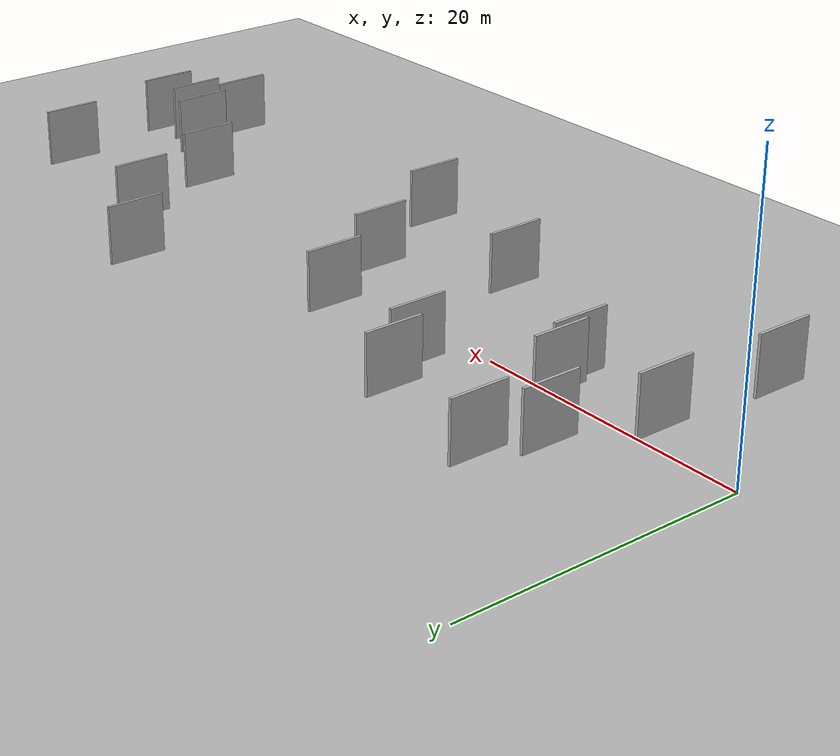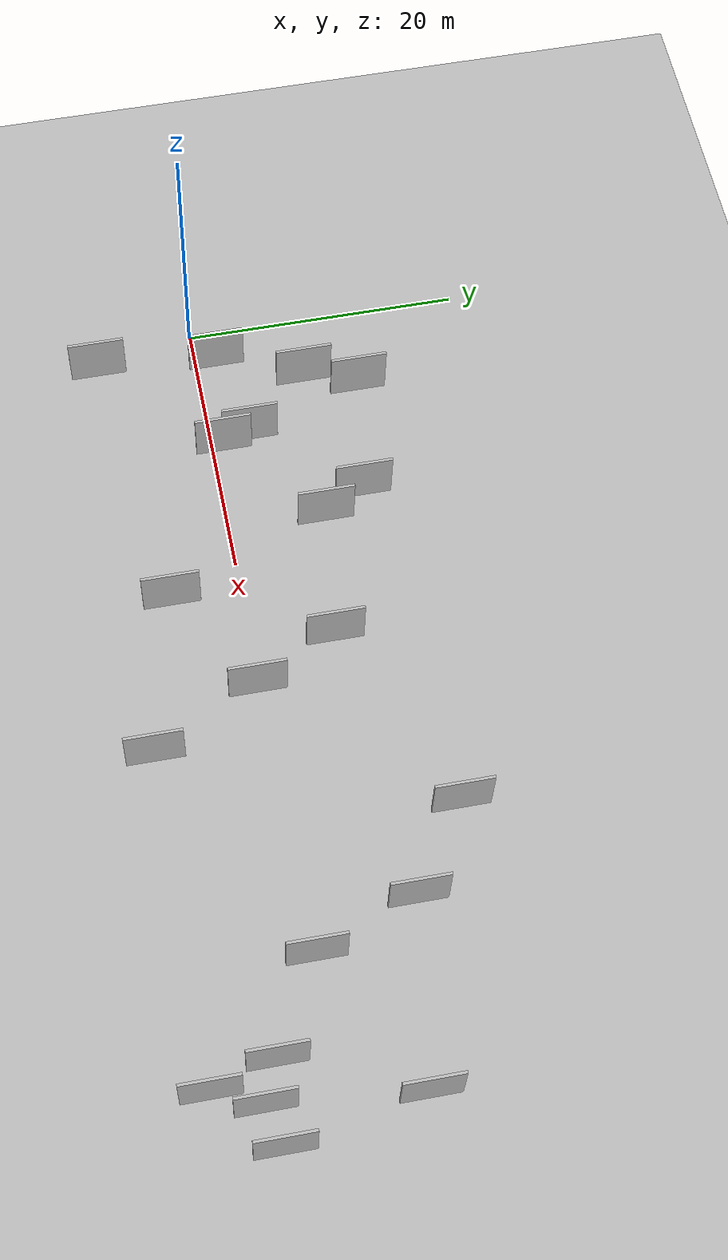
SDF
<?xml version="1.0" encoding="utf-8"?>

<sdf version="1.6">

   <world name="default">

      <gui fullscreen="0">

         <camera name="user_camera">

            <pose>-15 0 4.57585 0 0 0</pose>

            <view_controller>orbit</view_controller>

         </camera>

      </gui>

      <scene>

         <sky>

           <clouds>

             <speed>12</speed>

           </clouds>

         </sky>

         <ambient>0.4 0.4 0.4 1</ambient>

         <background>0.7 0.7 0.7 1</background>

         <shadows>1</shadows>

      </scene>

      <gravity>0 0 -9.8066</gravity>

      <magnetic_field>6e-06 2.3e-05 -4.2e-05</magnetic_field>

      <physics default="0" name="default_physics" type="ode">

         <ode>

            <solver>

               <type>quick</type>

               <iters>10</iters>

               <sor>1.0</sor>

               <use_dynamic_moi_rescaling>0</use_dynamic_moi_rescaling>

            </solver>

            <constraints>

               <cfm>0</cfm>

               <erp>0.2</erp>

               <contact_max_correcting_vel>100</contact_max_correcting_vel>

               <contact_surface_layer>0.001</contact_surface_layer>

            </constraints>

         </ode>

         <max_step_size>0.004</max_step_size>

         <real_time_factor>1</real_time_factor>

         <real_time_update_rate>250</real_time_update_rate>

      </physics>

      <light name="sun" type="directional">

         <cast_shadows>1</cast_shadows>

         <pose>0 0 10 0 0 0</pose>

         <diffuse>0.8 0.8 0.8 1</diffuse>

         <specular>0.2 0.2 0.2 1</specular>

         <attenuation>

            <range>1000</range>

            <constant>0.9</constant>

            <linear>0.01</linear>

            <quadratic>0.001</quadratic>

         </attenuation>

         <direction>-0.5 0.1 -0.9</direction>

      </light>

      <include>

         <name>ground_plane_1</name>

         <uri>model://HANNAS_ground_plane</uri>

         <pose>0 0 0  0 0 0</pose>

      </include>

      <include>

         <name>ground_plane_2</name>

         <uri>model://HANNAS_ground_plane</uri>

         <pose>100 0 0  0 0 0</pose>

      </include>

      <model name="HANNAS_wall_1">

         <static>1</static>

         <pose frame="">28.3968 5.5588 2.5 0.000000 0.000000 1.570796</pose>

         <link name="link">

            <pose frame="">0 0 2.00 0 0 0</pose>

            <collision name="collision">

               <geometry>

                  <box>

                     <size>4.00 0.2 4.00</size>

                  </box>

               </geometry>

               <max_contacts>10</max_contacts>

               <surface>

                  <contact>

                     <ode/>

                  </contact>

                  <bounce/>

                  <friction>

                     <torsional>

                        <ode/>

                     </torsional>

                     <ode/>

                  </friction>

               </surface>

            </collision>

            <visual name="visual">

               <cast_shadows>0</cast_shadows>

               <geometry>

                  <box>

                     <size>4.00 0.2 4.00</size>

                  </box>

               </geometry>

               <material>

                  <script>

                     <uri>model://HANNAS_wall/materials/scripts</uri>

                     <uri>model://HANNAS_wall/materials/textures</uri>

                     <name>vrc/HANNAS_wall</name>

                  </script>

               </material>

            </visual>

            <self_collide>0</self_collide>

            <enable_wind>0</enable_wind>

            <kinematic>0</kinematic>

         </link>

      </model>

      <model name="HANNAS_wall_2">

         <static>1</static>

         <pose frame="">11.1994 2.6727 2.5 0.000000 0.000000 1.570796</pose>

         <link name="link">

            <pose frame="">0 0 2.00 0 0 0</pose>

            <collision name="collision">

               <geometry>

                  <box>

                     <size>4.00 0.2 4.00</size>

                  </box>

               </geometry>

               <max_contacts>10</max_contacts>

               <surface>

                  <contact>

                     <ode/>

                  </contact>

                  <bounce/>

                  <friction>

                     <torsional>

                        <ode/>

                     </torsional>

                     <ode/>

                  </friction>

               </surface>

            </collision>

            <visual name="visual">

               <cast_shadows>0</cast_shadows>

               <geometry>

                  <box>

                     <size>4.00 0.2 4.00</size>

                  </box>

               </geometry>

               <material>

                  <script>

                     <uri>model://HANNAS_wall/materials/scripts</uri>

                     <uri>model://HANNAS_wall/materials/textures</uri>

                     <name>vrc/HANNAS_wall</name>

                  </script>

               </material>

            </visual>

            <self_collide>0</self_collide>

            <enable_wind>0</enable_wind>

            <kinematic>0</kinematic>

         </link>

      </model>

      <model name="HANNAS_wall_3">

         <static>1</static>

         <pose frame="">18.8896 6.7388 2.5 0.000000 0.000000 1.570796</pose>

         <link name="link">

            <pose frame="">0 0 2.00 0 0 0</pose>

            <collision name="collision">

               <geometry>

                  <box>

                     <size>4.00 0.2 4.00</size>

                  </box>

               </geometry>

               <max_contacts>10</max_contacts>

               <surface>

                  <contact>

                     <ode/>

                  </contact>

                  <bounce/>

                  <friction>

                     <torsional>

                        <ode/>

                     </torsional>

                     <ode/>

                  </friction>

               </surface>

            </collision>

            <visual name="visual">

               <cast_shadows>0</cast_shadows>

               <geometry>

                  <box>

                     <size>4.00 0.2 4.00</size>

                  </box>

               </geometry>

               <material>

                  <script>

                     <uri>model://HANNAS_wall/materials/scripts</uri>

                     <uri>model://HANNAS_wall/materials/textures</uri>

                     <name>vrc/HANNAS_wall</name>

                  </script>

               </material>

            </visual>

            <self_collide>0</self_collide>

            <enable_wind>0</enable_wind>

            <kinematic>0</kinematic>

         </link>

      </model>

      <model name="HANNAS_wall_4">

         <static>1</static>

         <pose frame="">23.6388 -4.9676 2.5 0.000000 0.000000 1.570796</pose>

         <link name="link">

            <pose frame="">0 0 2.00 0 0 0</pose>

            <collision name="collision">

               <geometry>

                  <box>

                     <size>4.00 0.2 4.00</size>

                  </box>

               </geometry>

               <max_contacts>10</max_contacts>

               <surface>

                  <contact>

                     <ode/>

                  </contact>

                  <bounce/>

                  <friction>

                     <torsional>

                        <ode/>

                     </torsional>

                     <ode/>

                  </friction>

               </surface>

            </collision>

            <visual name="visual">

               <cast_shadows>0</cast_shadows>

               <geometry>

                  <box>

                     <size>4.00 0.2 4.00</size>

                  </box>

               </geometry>

               <material>

                  <script>

                     <uri>model://HANNAS_wall/materials/scripts</uri>

                     <uri>model://HANNAS_wall/materials/textures</uri>

                     <name>vrc/HANNAS_wall</name>

                  </script>

               </material>

            </visual>

            <self_collide>0</self_collide>

            <enable_wind>0</enable_wind>

            <kinematic>0</kinematic>

         </link>

      </model>

      <model name="HANNAS_wall_5">

         <static>1</static>

         <pose frame="">62.3791 -4.1199 2.5 0.000000 0.000000 1.570796</pose>

         <link name="link">

            <pose frame="">0 0 2.00 0 0 0</pose>

            <collision name="collision">

               <geometry>

                  <box>

                     <size>4.00 0.2 4.00</size>

                  </box>

               </geometry>

               <max_contacts>10</max_contacts>

               <surface>

                  <contact>

                     <ode/>

                  </contact>

                  <bounce/>

                  <friction>

                     <torsional>

                        <ode/>

                     </torsional>

                     <ode/>

                  </friction>

               </surface>

            </collision>

            <visual name="visual">

               <cast_shadows>0</cast_shadows>

               <geometry>

                  <box>

                     <size>4.00 0.2 4.00</size>

                  </box>

               </geometry>

               <material>

                  <script>

                     <uri>model://HANNAS_wall/materials/scripts</uri>

                     <uri>model://HANNAS_wall/materials/textures</uri>

                     <name>vrc/HANNAS_wall</name>

                  </script>

               </material>

            </visual>

            <self_collide>0</self_collide>

            <enable_wind>0</enable_wind>

            <kinematic>0</kinematic>

         </link>

      </model>

      <model name="HANNAS_wall_6">

         <static>1</static>

         <pose frame="">11.7967 0.6727 2.5 0.000000 0.000000 1.570796</pose>

         <link name="link">

            <pose frame="">0 0 2.00 0 0 0</pose>

            <collision name="collision">

               <geometry>

                  <box>

                     <size>4.00 0.2 4.00</size>

                  </box>

               </geometry>

               <max_contacts>10</max_contacts>

               <surface>

                  <contact>

                     <ode/>

                  </contact>

                  <bounce/>

                  <friction>

                     <torsional>

                        <ode/>

                     </torsional>

                     <ode/>

                  </friction>

               </surface>

            </collision>

            <visual name="visual">

               <cast_shadows>0</cast_shadows>

               <geometry>

                  <box>

                     <size>4.00 0.2 4.00</size>

                  </box>

               </geometry>

               <material>

                  <script>

                     <uri>model://HANNAS_wall/materials/scripts</uri>

                     <uri>model://HANNAS_wall/materials/textures</uri>

                     <name>vrc/HANNAS_wall</name>

                  </script>

               </material>

            </visual>

            <self_collide>0</self_collide>

            <enable_wind>0</enable_wind>

            <kinematic>0</kinematic>

         </link>

      </model>

      <model name="HANNAS_wall_7">

         <static>1</static>

         <pose frame="">17.2858 9.7372 2.5 0.000000 0.000000 1.570796</pose>

         <link name="link">

            <pose frame="">0 0 2.00 0 0 0</pose>

            <collision name="collision">

               <geometry>

                  <box>

                     <size>4.00 0.2 4.00</size>

                  </box>

               </geometry>

               <max_contacts>10</max_contacts>

               <surface>

                  <contact>

                     <ode/>

                  </contact>

                  <bounce/>

                  <friction>

                     <torsional>

                        <ode/>

                     </torsional>

                     <ode/>

                  </friction>

               </surface>

            </collision>

            <visual name="visual">

               <cast_shadows>0</cast_shadows>

               <geometry>

                  <box>

                     <size>4.00 0.2 4.00</size>

                  </box>

               </geometry>

               <material>

                  <script>

                     <uri>model://HANNAS_wall/materials/scripts</uri>

                     <uri>model://HANNAS_wall/materials/textures</uri>

                     <name>vrc/HANNAS_wall</name>

                  </script>

               </material>

            </visual>

            <self_collide>0</self_collide>

            <enable_wind>0</enable_wind>

            <kinematic>0</kinematic>

         </link>

      </model>

      <model name="HANNAS_wall_8">

         <static>1</static>

         <pose frame="">31.3209 -0.3164 2.5 0.000000 0.000000 1.570796</pose>

         <link name="link">

            <pose frame="">0 0 2.00 0 0 0</pose>

            <collision name="collision">

               <geometry>

                  <box>

                     <size>4.00 0.2 4.00</size>

                  </box>

               </geometry>

               <max_contacts>10</max_contacts>

               <surface>

                  <contact>

                     <ode/>

                  </contact>

                  <bounce/>

                  <friction>

                     <torsional>

                        <ode/>

                     </torsional>

                     <ode/>

                  </friction>

               </surface>

            </collision>

            <visual name="visual">

               <cast_shadows>0</cast_shadows>

               <geometry>

                  <box>

                     <size>4.00 0.2 4.00</size>

                  </box>

               </geometry>

               <material>

                  <script>

                     <uri>model://HANNAS_wall/materials/scripts</uri>

                     <uri>model://HANNAS_wall/materials/textures</uri>

                     <name>vrc/HANNAS_wall</name>

                  </script>

               </material>

            </visual>

            <self_collide>0</self_collide>

            <enable_wind>0</enable_wind>

            <kinematic>0</kinematic>

         </link>

      </model>

      <model name="HANNAS_wall_9">

         <static>1</static>

         <pose frame="">8.4131 11.1066 2.5 0.000000 0.000000 1.570796</pose>

         <link name="link">

            <pose frame="">0 0 2.00 0 0 0</pose>

            <collision name="collision">

               <geometry>

                  <box>

                     <size>4.00 0.2 4.00</size>

                  </box>

               </geometry>

               <max_contacts>10</max_contacts>

               <surface>

                  <contact>

                     <ode/>

                  </contact>

                  <bounce/>

                  <friction>

                     <torsional>

                        <ode/>

                     </torsional>

                     <ode/>

                  </friction>

               </surface>

            </collision>

            <visual name="visual">

               <cast_shadows>0</cast_shadows>

               <geometry>

                  <box>

                     <size>4.00 0.2 4.00</size>

                  </box>

               </geometry>

               <material>

                  <script>

                     <uri>model://HANNAS_wall/materials/scripts</uri>

                     <uri>model://HANNAS_wall/materials/textures</uri>

                     <name>vrc/HANNAS_wall</name>

                  </script>

               </material>

            </visual>

            <self_collide>0</self_collide>

            <enable_wind>0</enable_wind>

            <kinematic>0</kinematic>

         </link>

      </model>

      <model name="HANNAS_wall_10">

         <static>1</static>

         <pose frame="">35.1120 -7.8804 2.5 0.000000 0.000000 1.570796</pose>

         <link name="link">

            <pose frame="">0 0 2.00 0 0 0</pose>

            <collision name="collision">

               <geometry>

                  <box>

                     <size>4.00 0.2 4.00</size>

                  </box>

               </geometry>

               <max_contacts>10</max_contacts>

               <surface>

                  <contact>

                     <ode/>

                  </contact>

                  <bounce/>

                  <friction>

                     <torsional>

                        <ode/>

                     </torsional>

                     <ode/>

                  </friction>

               </surface>

            </collision>

            <visual name="visual">

               <cast_shadows>0</cast_shadows>

               <geometry>

                  <box>

                     <size>4.00 0.2 4.00</size>

                  </box>

               </geometry>

               <material>

                  <script>

                     <uri>model://HANNAS_wall/materials/scripts</uri>

                     <uri>model://HANNAS_wall/materials/textures</uri>

                     <name>vrc/HANNAS_wall</name>

                  </script>

               </material>

            </visual>

            <self_collide>0</self_collide>

            <enable_wind>0</enable_wind>

            <kinematic>0</kinematic>

         </link>

      </model>

      <model name="HANNAS_wall_11">

         <static>1</static>

         <pose frame="">6.9530 7.3696 2.5 0.000000 0.000000 1.570796</pose>

         <link name="link">

            <pose frame="">0 0 2.00 0 0 0</pose>

            <collision name="collision">

               <geometry>

                  <box>

                     <size>4.00 0.2 4.00</size>

                  </box>

               </geometry>

               <max_contacts>10</max_contacts>

               <surface>

                  <contact>

                     <ode/>

                  </contact>

                  <bounce/>

                  <friction>

                     <torsional>

                        <ode/>

                     </torsional>

                     <ode/>

                  </friction>

               </surface>

            </collision>

            <visual name="visual">

               <cast_shadows>0</cast_shadows>

               <geometry>

                  <box>

                     <size>4.00 0.2 4.00</size>

                  </box>

               </geometry>

               <material>

                  <script>

                     <uri>model://HANNAS_wall/materials/scripts</uri>

                     <uri>model://HANNAS_wall/materials/textures</uri>

                     <name>vrc/HANNAS_wall</name>

                  </script>

               </material>

            </visual>

            <self_collide>0</self_collide>

            <enable_wind>0</enable_wind>

            <kinematic>0</kinematic>

         </link>

      </model>

      <model name="HANNAS_wall_12">

         <static>1</static>

         <pose frame="">3.7728 -7.2593 2.5 0.000000 0.000000 1.570796</pose>

         <link name="link">

            <pose frame="">0 0 2.00 0 0 0</pose>

            <collision name="collision">

               <geometry>

                  <box>

                     <size>4.00 0.2 4.00</size>

                  </box>

               </geometry>

               <max_contacts>10</max_contacts>

               <surface>

                  <contact>

                     <ode/>

                  </contact>

                  <bounce/>

                  <friction>

                     <torsional>

                        <ode/>

                     </torsional>

                     <ode/>

                  </friction>

               </surface>

            </collision>

            <visual name="visual">

               <cast_shadows>0</cast_shadows>

               <geometry>

                  <box>

                     <size>4.00 0.2 4.00</size>

                  </box>

               </geometry>

               <material>

                  <script>

                     <uri>model://HANNAS_wall/materials/scripts</uri>

                     <uri>model://HANNAS_wall/materials/textures</uri>

                     <name>vrc/HANNAS_wall</name>

                  </script>

               </material>

            </visual>

            <self_collide>0</self_collide>

            <enable_wind>0</enable_wind>

            <kinematic>0</kinematic>

         </link>

      </model>

      <model name="HANNAS_wall_13">

         <static>1</static>

         <pose frame="">50.6479 0.0414 2.5 0.000000 0.000000 1.570796</pose>

         <link name="link">

            <pose frame="">0 0 2.00 0 0 0</pose>

            <collision name="collision">

               <geometry>

                  <box>

                     <size>4.00 0.2 4.00</size>

                  </box>

               </geometry>

               <max_contacts>10</max_contacts>

               <surface>

                  <contact>

                     <ode/>

                  </contact>

                  <bounce/>

                  <friction>

                     <torsional>

                        <ode/>

                     </torsional>

                     <ode/>

                  </friction>

               </surface>

            </collision>

            <visual name="visual">

               <cast_shadows>0</cast_shadows>

               <geometry>

                  <box>

                     <size>4.00 0.2 4.00</size>

                  </box>

               </geometry>

               <material>

                  <script>

                     <uri>model://HANNAS_wall/materials/scripts</uri>

                     <uri>model://HANNAS_wall/materials/textures</uri>

                     <name>vrc/HANNAS_wall</name>

                  </script>

               </material>

            </visual>

            <self_collide>0</self_collide>

            <enable_wind>0</enable_wind>

            <kinematic>0</kinematic>

         </link>

      </model>

      <model name="HANNAS_wall_14">

         <static>1</static>

         <pose frame="">58.2196 -7.9923 2.5 0.000000 0.000000 1.570796</pose>

         <link name="link">

            <pose frame="">0 0 2.00 0 0 0</pose>

            <collision name="collision">

               <geometry>

                  <box>

                     <size>4.00 0.2 4.00</size>

                  </box>

               </geometry>

               <max_contacts>10</max_contacts>

               <surface>

                  <contact>

                     <ode/>

                  </contact>

                  <bounce/>

                  <friction>

                     <torsional>

                        <ode/>

                     </torsional>

                     <ode/>

                  </friction>

               </surface>

            </collision>

            <visual name="visual">

               <cast_shadows>0</cast_shadows>

               <geometry>

                  <box>

                     <size>4.00 0.2 4.00</size>

                  </box>

               </geometry>

               <material>

                  <script>

                     <uri>model://HANNAS_wall/materials/scripts</uri>

                     <uri>model://HANNAS_wall/materials/textures</uri>

                     <name>vrc/HANNAS_wall</name>

                  </script>

               </material>

            </visual>

            <self_collide>0</self_collide>

            <enable_wind>0</enable_wind>

            <kinematic>0</kinematic>

         </link>

      </model>

      <model name="HANNAS_wall_15">

         <static>1</static>

         <pose frame="">59.6118 -4.8260 2.5 0.000000 0.000000 1.570796</pose>

         <link name="link">

            <pose frame="">0 0 2.00 0 0 0</pose>

            <collision name="collision">

               <geometry>

                  <box>

                     <size>4.00 0.2 4.00</size>

                  </box>

               </geometry>

               <max_contacts>10</max_contacts>

               <surface>

                  <contact>

                     <ode/>

                  </contact>

                  <bounce/>

                  <friction>

                     <torsional>

                        <ode/>

                     </torsional>

                     <ode/>

                  </friction>

               </surface>

            </collision>

            <visual name="visual">

               <cast_shadows>0</cast_shadows>

               <geometry>

                  <box>

                     <size>4.00 0.2 4.00</size>

                  </box>

               </geometry>

               <material>

                  <script>

                     <uri>model://HANNAS_wall/materials/scripts</uri>

                     <uri>model://HANNAS_wall/materials/textures</uri>

                     <name>vrc/HANNAS_wall</name>

                  </script>

               </material>

            </visual>

            <self_collide>0</self_collide>

            <enable_wind>0</enable_wind>

            <kinematic>0</kinematic>

         </link>

      </model>

      <model name="HANNAS_wall_16">

         <static>1</static>

         <pose frame="">42.0684 11.3313 2.5 0.000000 0.000000 1.570796</pose>

         <link name="link">

            <pose frame="">0 0 2.00 0 0 0</pose>

            <collision name="collision">

               <geometry>

                  <box>

                     <size>4.00 0.2 4.00</size>

                  </box>

               </geometry>

               <max_contacts>10</max_contacts>

               <surface>

                  <contact>

                     <ode/>

                  </contact>

                  <bounce/>

                  <friction>

                     <torsional>

                        <ode/>

                     </torsional>

                     <ode/>

                  </friction>

               </surface>

            </collision>

            <visual name="visual">

               <cast_shadows>0</cast_shadows>

               <geometry>

                  <box>

                     <size>4.00 0.2 4.00</size>

                  </box>

               </geometry>

               <material>

                  <script>

                     <uri>model://HANNAS_wall/materials/scripts</uri>

                     <uri>model://HANNAS_wall/materials/textures</uri>

                     <name>vrc/HANNAS_wall</name>

                  </script>

               </material>

            </visual>

            <self_collide>0</self_collide>

            <enable_wind>0</enable_wind>

            <kinematic>0</kinematic>

         </link>

      </model>

      <model name="HANNAS_wall_17">

         <static>1</static>

         <pose frame="">60.5737 5.3107 2.5 0.000000 0.000000 1.570796</pose>

         <link name="link">

            <pose frame="">0 0 2.00 0 0 0</pose>

            <collision name="collision">

               <geometry>

                  <box>

                     <size>4.00 0.2 4.00</size>

                  </box>

               </geometry>

               <max_contacts>10</max_contacts>

               <surface>

                  <contact>

                     <ode/>

                  </contact>

                  <bounce/>

                  <friction>

                     <torsional>

                        <ode/>

                     </torsional>

                     <ode/>

                  </friction>

               </surface>

            </collision>

            <visual name="visual">

               <cast_shadows>0</cast_shadows>

               <geometry>

                  <box>

                     <size>4.00 0.2 4.00</size>

                  </box>

               </geometry>

               <material>

                  <script>

                     <uri>model://HANNAS_wall/materials/scripts</uri>

                     <uri>model://HANNAS_wall/materials/textures</uri>

                     <name>vrc/HANNAS_wall</name>

                  </script>

               </material>

            </visual>

            <self_collide>0</self_collide>

            <enable_wind>0</enable_wind>

            <kinematic>0</kinematic>

         </link>

      </model>

      <model name="HANNAS_wall_18">

         <static>1</static>

         <pose frame="">48.0183 7.1754 2.5 0.000000 0.000000 1.570796</pose>

         <link name="link">

            <pose frame="">0 0 2.00 0 0 0</pose>

            <collision name="collision">

               <geometry>

                  <box>

                     <size>4.00 0.2 4.00</size>

                  </box>

               </geometry>

               <max_contacts>10</max_contacts>

               <surface>

                  <contact>

                     <ode/>

                  </contact>

                  <bounce/>

                  <friction>

                     <torsional>

                        <ode/>

                     </torsional>

                     <ode/>

                  </friction>

               </surface>

            </collision>

            <visual name="visual">

               <cast_shadows>0</cast_shadows>

               <geometry>

                  <box>

                     <size>4.00 0.2 4.00</size>

                  </box>

               </geometry>

               <material>

                  <script>

                     <uri>model://HANNAS_wall/materials/scripts</uri>

                     <uri>model://HANNAS_wall/materials/textures</uri>

                     <name>vrc/HANNAS_wall</name>

                  </script>

               </material>

            </visual>

            <self_collide>0</self_collide>

            <enable_wind>0</enable_wind>

            <kinematic>0</kinematic>

         </link>

      </model>

      <model name="HANNAS_wall_19">

         <static>1</static>

         <pose frame="">56.9027 -3.6013 2.5 0.000000 0.000000 1.570796</pose>

         <link name="link">

            <pose frame="">0 0 2.00 0 0 0</pose>

            <collision name="collision">

               <geometry>

                  <box>

                     <size>4.00 0.2 4.00</size>

                  </box>

               </geometry>

               <max_contacts>10</max_contacts>

               <surface>

                  <contact>

                     <ode/>

                  </contact>

                  <bounce/>

                  <friction>

                     <torsional>

                        <ode/>

                     </torsional>

                     <ode/>

                  </friction>

               </surface>

            </collision>

            <visual name="visual">

               <cast_shadows>0</cast_shadows>

               <geometry>

                  <box>

                     <size>4.00 0.2 4.00</size>

                  </box>

               </geometry>

               <material>

                  <script>

                     <uri>model://HANNAS_wall/materials/scripts</uri>

                     <uri>model://HANNAS_wall/materials/textures</uri>

                     <name>vrc/HANNAS_wall</name>

                  </script>

               </material>

            </visual>

            <self_collide>0</self_collide>

            <enable_wind>0</enable_wind>

            <kinematic>0</kinematic>

         </link>

      </model>

      <model name="HANNAS_wall_20">

         <static>1</static>

         <pose frame="">4.4597 1.3489 2.5 0.000000 0.000000 1.570796</pose>

         <link name="link">

            <pose frame="">0 0 2.00 0 0 0</pose>

            <collision name="collision">

               <geometry>

                  <box>

                     <size>4.00 0.2 4.00</size>

                  </box>

               </geometry>

               <max_contacts>10</max_contacts>

               <surface>

                  <contact>

                     <ode/>

                  </contact>

                  <bounce/>

                  <friction>

                     <torsional>

                        <ode/>

                     </torsional>

                     <ode/>

                  </friction>

               </surface>

            </collision>

            <visual name="visual">

               <cast_shadows>0</cast_shadows>

               <geometry>

                  <box>

                     <size>4.00 0.2 4.00</size>

                  </box>

               </geometry>

               <material>

                  <script>

                     <uri>model://HANNAS_wall/materials/scripts</uri>

                     <uri>model://HANNAS_wall/materials/textures</uri>

                     <name>vrc/HANNAS_wall</name>

                  </script>

               </material>

            </visual>

            <self_collide>0</self_collide>

            <enable_wind>0</enable_wind>

            <kinematic>0</kinematic>

         </link>

      </model>

   </world>

</sdf>

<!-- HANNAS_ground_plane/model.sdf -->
<sdf version="1.4">
<model name="HANNAS_ground_plane">
  <static>true</static>
    <link name="link">
      <collision name="collision">
        <geometry>
          <plane>
            <normal>0 0 1</normal>
            <size>1000 1000</size>
          </plane>
        </geometry>
        <surface>
          <friction>
            <ode>
              <mu>100</mu>
              <mu2>50</mu2>
            </ode>
          </friction>
        </surface>
      </collision>
      <visual name="visual">
        <cast_shadows>false</cast_shadows>
        <geometry>
          <plane>
            <normal>0 0 1</normal>
            <size>1000 1000</size>
          </plane>
        </geometry>
        <material>
          <script>
            <uri>model://HANNAS_ground_plane/materials/scripts/HANNAS_ground_plane.material</uri>
	    <uri>model://HANNAS_ground_plane/materials/textures</uri>
            <name>HANNASGroundPlane/Image</name>
          </script>
        </material>
      </visual>
    </link>
  </model>
</sdf>
